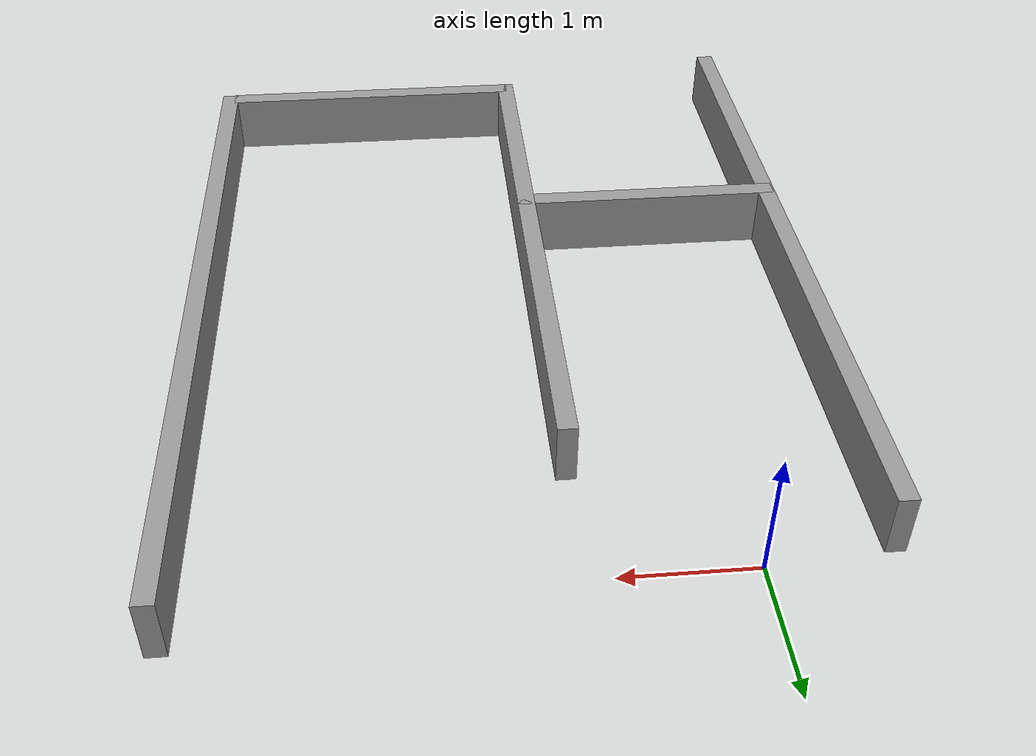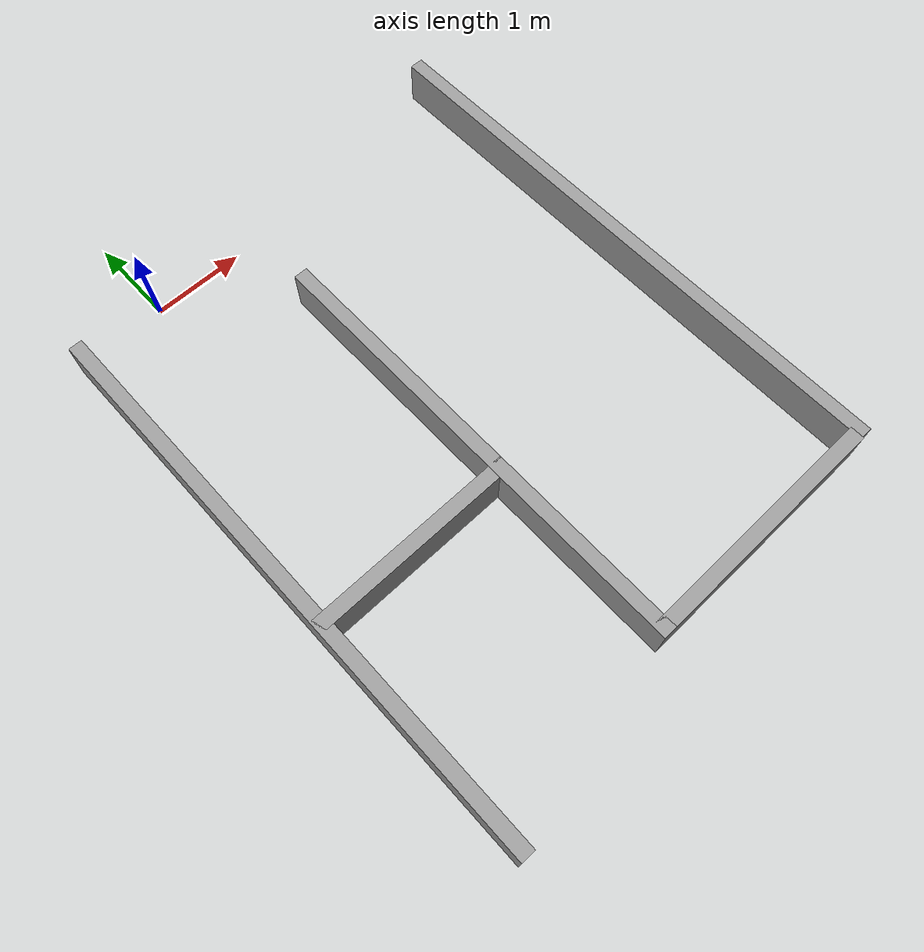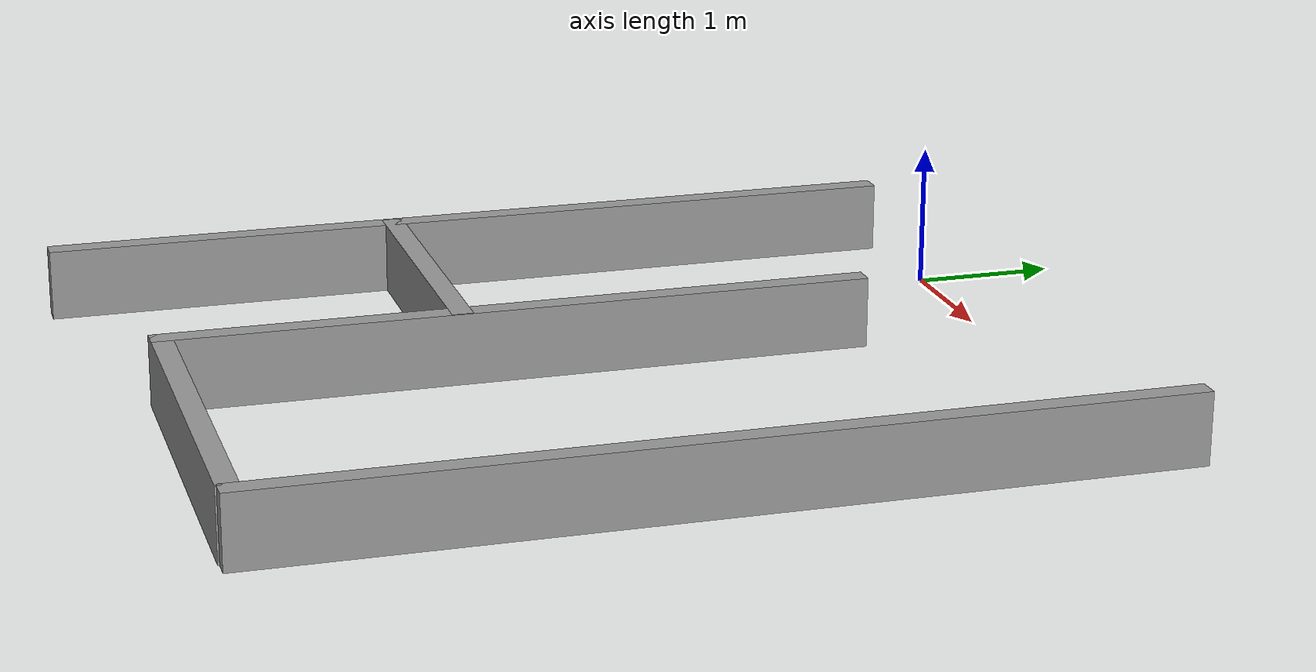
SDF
<?xml version='1.0'?>
<sdf version='1.6'>
  <model name='simple'>
    <pose frame=''>1.507 -2.97444 0 0 -0 0</pose>
    <link name='Wall_0'>
      <collision name='Wall_0_Collision'>
        <geometry>
          <box>
            <size>6.25 0.15 0.5</size>
          </box>
        </geometry>
        <pose frame=''>0 0 0.25 0 -0 0</pose>
      </collision>
      <visual name='Wall_0_Visual'>
        <pose frame=''>0 0 0.25 0 -0 0</pose>
        <geometry>
          <box>
            <size>6.25 0.15 0.5</size>
          </box>
        </geometry>
        <material>
          <script>
            <uri>file://media/materials/scripts/gazebo.material</uri>
            <name>Gazebo/Grey</name>
          </script>
          <ambient>1 1 1 1</ambient>
        </material>
        <meta>
          <layer>0</layer>
        </meta>
      </visual>
      <pose frame=''>-2.423 -0.217443 0 0 -0 1.5708</pose>
    </link>
    <link name='Wall_2'>
      <collision name='Wall_2_Collision'>
        <geometry>
          <box>
            <size>4.97991 0.15 0.5</size>
          </box>
        </geometry>
        <pose frame=''>0 0 0.25 0 -0 0</pose>
      </collision>
      <visual name='Wall_2_Visual'>
        <pose frame=''>0 0 0.25 0 -0 0</pose>
        <geometry>
          <box>
            <size>4.97991 0.15 0.5</size>
          </box>
        </geometry>
        <material>
          <script>
            <uri>file://media/materials/scripts/gazebo.material</uri>
            <name>Gazebo/Grey</name>
          </script>
          <ambient>1 1 1 1</ambient>
        </material>
        <meta>
          <layer>0</layer>
        </meta>
      </visual>
      <pose frame=''>-0.297 -0.428557 0 0 -0 -1.5708</pose>
    </link>
    <link name='Wall_4'>
      <collision name='Wall_4_Collision'>
        <geometry>
          <box>
            <size>6.25 0.15 0.5</size>
          </box>
        </geometry>
        <pose frame=''>0 0 0.25 0 -0 0</pose>
      </collision>
      <visual name='Wall_4_Visual'>
        <pose frame=''>0 0 0.25 0 -0 0</pose>
        <geometry>
          <box>
            <size>6.25 0.15 0.5</size>
          </box>
        </geometry>
        <material>
          <script>
            <uri>file://media/materials/scripts/gazebo.material</uri>
            <name>Gazebo/Grey</name>
          </script>
          <ambient>1 1 1 1</ambient>
        </material>
        <meta>
          <layer>0</layer>
        </meta>
      </visual>
      <pose frame=''>2.423 0.217443 0 0 -0 -1.5708</pose>
    </link>
    <link name='Wall_6'>
      <collision name='Wall_6_Collision'>
        <geometry>
          <box>
            <size>2.75 0.15 0.5</size>
          </box>
        </geometry>
        <pose frame=''>0 0 0.25 0 -0 0</pose>
      </collision>
      <visual name='Wall_6_Visual'>
        <pose frame=''>0 0 0.25 0 -0 0</pose>
        <geometry>
          <box>
            <size>2.75 0.15 0.5</size>
          </box>
        </geometry>
        <material>
          <script>
            <uri>file://media/materials/scripts/gazebo.material</uri>
            <name>Gazebo/Grey</name>
          </script>
          <ambient>1 1 1 1</ambient>
        </material>
        <meta>
          <layer>0</layer>
        </meta>
      </visual>
      <pose frame=''>1.003 -2.84356 0 0 -0 0</pose>
    </link>
    <link name='Wall_8'>
      <collision name='Wall_8_Collision'>
        <geometry>
          <box>
            <size>2.25 0.15 0.5</size>
          </box>
        </geometry>
        <pose frame=''>0 0 0.25 0 -0 0</pose>
      </collision>
      <visual name='Wall_8_Visual'>
        <pose frame=''>0 0 0.25 0 -0 0</pose>
        <geometry>
          <box>
            <size>2.25 0.15 0.5</size>
          </box>
        </geometry>
        <material>
          <script>
            <uri>file://media/materials/scripts/gazebo.material</uri>
            <name>Gazebo/Grey</name>
          </script>
          <ambient>1 1 1 1</ambient>
        </material>
        <meta>
          <layer>0</layer>
        </meta>
      </visual>
      <pose frame=''>-1.36 -0.823557 0 0 -0 0</pose>
    </link>
    <static>1</static>
  </model>
</sdf>
